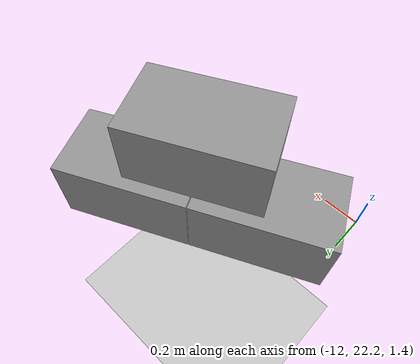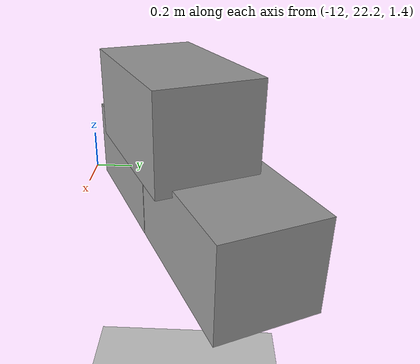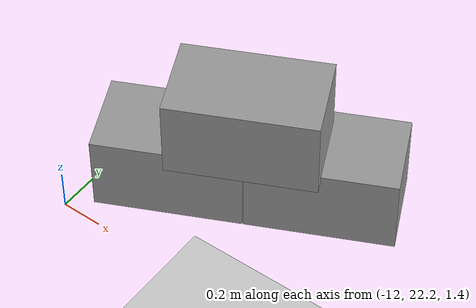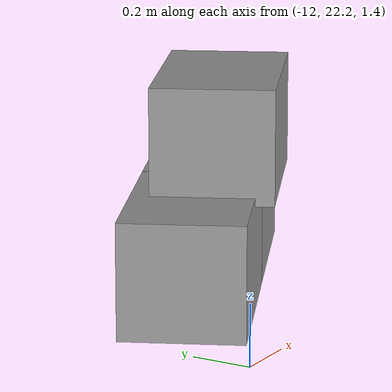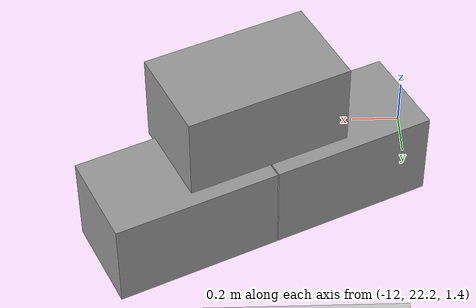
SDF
<sdf version="1.7">
 <world name="default">
  <model name="ground_plane">
   <static>1</static>
   <link name="link">
    <collision name="collision">
     <geometry><plane><normal>0 0 1</normal><size>100 100</size></plane></geometry>
     <surface>
      <contact><collide_bitmask>65535</collide_bitmask></contact>
      <friction><ode><mu>100</mu><mu2>50</mu2></ode></friction>
     </surface>
    </collision>
    <visual name="visual">
     <cast_shadows>0</cast_shadows>
     <geometry><plane><normal>0 0 1</normal><size>100 100</size></plane></geometry>
     <material>
      <script><uri>file://media/materials/scripts/gazebo.material</uri><name>Gazebo/Grey</name></script>
     </material>
    </visual>
   </link>
  </model>
  <model name="Add_Box_clone_clone_3_clone_0">
   <link name="link">
    <inertial>
     <mass>1</mass>
     <inertia>
      <ixx>0.166667</ixx>
      <ixy>0</ixy>
      <ixz>0</ixz>
      <iyy>0.166667</iyy>
      <iyz>0</iyz>
      <izz>0.166667</izz>
     </inertia>
    </inertial>
    <kinematic>1</kinematic>
    <gravity>0</gravity>
    <visual name="visual">
     <geometry><box><size>0.686 0.406 0.381</size></box></geometry>
     <material>
      <script><name>Gazebo/Grey</name><uri>file://media/materials/scripts/gazebo.material</uri></script>
      <shader type="pixel"><normal_map>__default__</normal_map></shader>
      <ambient>0.3 0.3 0.3 1</ambient>
      <diffuse>0.7 0.7 0.7 1</diffuse>
      <specular>0.01 0.01 0.01 1</specular>
      <emissive>0 0 0 1</emissive>
     </material>
    </visual>
    <collision name="collision">
     <geometry><box><size>1 1 1</size></box></geometry>
     <surface>
      <friction>
       <ode><mu>1</mu><mu2>1</mu2><fdir1>0 0 0</fdir1><slip1>0</slip1><slip2>0</slip2></ode>
       <torsional>
        <coefficient>1</coefficient>
        <patch_radius>0</patch_radius>
        <surface_radius>0</surface_radius>
        <use_patch_radius>1</use_patch_radius>
        <ode><slip>0</slip></ode>
       </torsional>
      </friction>
      <bounce><restitution_coefficient>0</restitution_coefficient><threshold>1e+06</threshold></bounce>
      <contact>
       <collide_without_contact>0</collide_without_contact>
       <collide_without_contact_bitmask>1</collide_without_contact_bitmask>
       <collide_bitmask>1</collide_bitmask>
       <ode>
        <soft_cfm>0</soft_cfm>
        <soft_erp>0.2</soft_erp>
        <kp>1e+13</kp>
        <kd>1</kd>
        <max_vel>0.01</max_vel>
        <min_depth>0</min_depth>
       </ode>
       <bullet>
        <split_impulse>1</split_impulse>
        <split_impulse_penetration_threshold>-0.01</split_impulse_penetration_threshold>
        <soft_cfm>0</soft_cfm>
        <soft_erp>0.2</soft_erp>
        <kp>1e+13</kp>
        <kd>1</kd>
       </bullet>
      </contact>
     </surface>
    </collision>
   </link>
   <link name="link_clone">
    <inertial>
     <mass>1</mass>
     <inertia>
      <ixx>0.166667</ixx>
      <ixy>0</ixy>
      <ixz>0</ixz>
      <iyy>0.166667</iyy>
      <iyz>0</iyz>
      <izz>0.166667</izz>
     </inertia>
    </inertial>
    <pose>-0.343354 -0.063316 0.354303 1e-05 -0 0</pose>
    <gravity>0</gravity>
    <visual name="visual">
     <geometry><box><size>0.686 0.406 0.381</size></box></geometry>
     <material>
      <script><name>Gazebo/Grey</name><uri>file://media/materials/scripts/gazebo.material</uri></script>
      <shader type="pixel"><normal_map>__default__</normal_map></shader>
      <ambient>0.3 0.3 0.3 1</ambient>
      <diffuse>0.7 0.7 0.7 1</diffuse>
      <specular>0.01 0.01 0.01 1</specular>
      <emissive>0 0 0 1</emissive>
     </material>
    </visual>
    <collision name="collision">
     <geometry><box><size>1 1 1</size></box></geometry>
     <surface>
      <friction>
       <ode><mu>1</mu><mu2>1</mu2><fdir1>0 0 0</fdir1><slip1>0</slip1><slip2>0</slip2></ode>
       <torsional>
        <coefficient>1</coefficient>
        <patch_radius>0</patch_radius>
        <surface_radius>0</surface_radius>
        <use_patch_radius>1</use_patch_radius>
        <ode><slip>0</slip></ode>
       </torsional>
      </friction>
      <bounce><restitution_coefficient>0</restitution_coefficient><threshold>1e+06</threshold></bounce>
      <contact>
       <collide_without_contact>0</collide_without_contact>
       <collide_without_contact_bitmask>1</collide_without_contact_bitmask>
       <collide_bitmask>1</collide_bitmask>
       <ode>
        <soft_cfm>0</soft_cfm>
        <soft_erp>0.2</soft_erp>
        <kp>1e+13</kp>
        <kd>1</kd>
        <max_vel>0.01</max_vel>
        <min_depth>0</min_depth>
       </ode>
       <bullet>
        <split_impulse>1</split_impulse>
        <split_impulse_penetration_threshold>-0.01</split_impulse_penetration_threshold>
        <soft_cfm>0</soft_cfm>
        <soft_erp>0.2</soft_erp>
        <kp>1e+13</kp>
        <kd>1</kd>
       </bullet>
      </contact>
     </surface>
    </collision>
   </link>
   <link name="link_clone_clone">
    <inertial>
     <mass>1</mass>
     <inertia>
      <ixx>0.166667</ixx>
      <ixy>0</ixy>
      <ixz>0</ixz>
      <iyy>0.166667</iyy>
      <iyz>0</iyz>
      <izz>0.166667</izz>
     </inertia>
    </inertial>
    <pose>-0.690786 -0.000183 -1e-05 2e-05 -0 0</pose>
    <gravity>0</gravity>
    <visual name="visual">
     <geometry><box><size>0.686 0.406 0.381</size></box></geometry>
     <material>
      <script><name>Gazebo/Grey</name><uri>file://media/materials/scripts/gazebo.material</uri></script>
      <shader type="pixel"><normal_map>__default__</normal_map></shader>
      <ambient>0.3 0.3 0.3 1</ambient>
      <diffuse>0.7 0.7 0.7 1</diffuse>
      <specular>0.01 0.01 0.01 1</specular>
      <emissive>0 0 0 1</emissive>
     </material>
    </visual>
    <collision name="collision">
     <geometry><box><size>1 1 1</size></box></geometry>
     <surface>
      <friction>
       <ode><mu>1</mu><mu2>1</mu2><fdir1>0 0 0</fdir1><slip1>0</slip1><slip2>0</slip2></ode>
       <torsional>
        <coefficient>1</coefficient>
        <patch_radius>0</patch_radius>
        <surface_radius>0</surface_radius>
        <use_patch_radius>1</use_patch_radius>
        <ode><slip>0</slip></ode>
       </torsional>
      </friction>
      <bounce><restitution_coefficient>0</restitution_coefficient><threshold>1e+06</threshold></bounce>
      <contact>
       <collide_without_contact>0</collide_without_contact>
       <collide_without_contact_bitmask>1</collide_without_contact_bitmask>
       <collide_bitmask>1</collide_bitmask>
       <ode>
        <soft_cfm>0</soft_cfm>
        <soft_erp>0.2</soft_erp>
        <kp>1e+13</kp>
        <kd>1</kd>
        <max_vel>0.01</max_vel>
        <min_depth>0</min_depth>
       </ode>
       <bullet>
        <split_impulse>1</split_impulse>
        <split_impulse_penetration_threshold>-0.01</split_impulse_penetration_threshold>
        <soft_cfm>0</soft_cfm>
        <soft_erp>0.2</soft_erp>
        <kp>1e+13</kp>
        <kd>1</kd>
       </bullet>
      </contact>
     </surface>
    </collision>
   </link>
   <static>0</static>
   <pose>-11.0385 22.8981 1.61518 0 -0 0.438114</pose>
  </model>
 </world>
</sdf>
